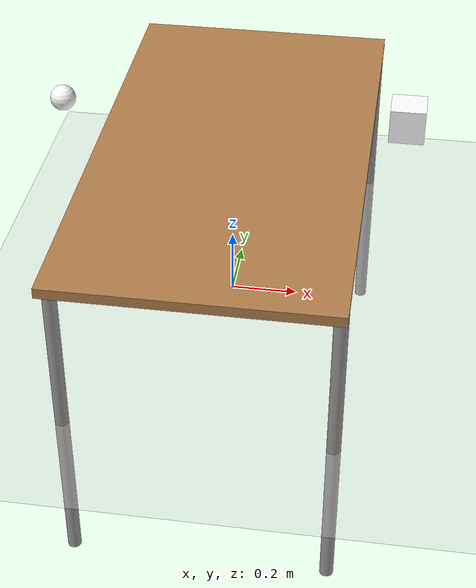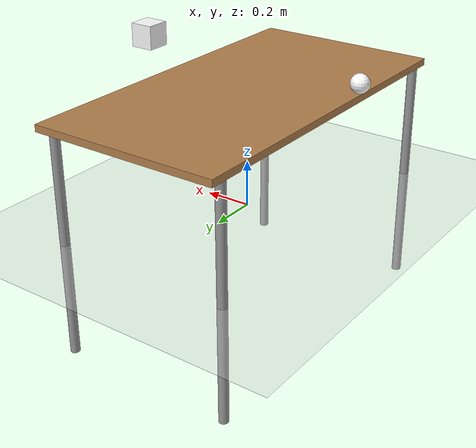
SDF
<sdf version="1.4">
 <world name="default">
  <include><uri>model://ground_plane</uri></include>
  <include><uri>model://sun</uri></include>
  <include><uri>model://table</uri><pose>0 0 -0.5 0 0 1.57</pose></include>
  <include><uri>model://wood_cube_10cm</uri><pose>0.5 0 0.6 0 0 0</pose></include>
  <include><uri>model://cricket_ball</uri><pose>-0.5 0 0.6 0 0 0</pose></include>
 </world>
</sdf>

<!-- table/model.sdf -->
<sdf version="1.5">
  <model name="table">
    <static>true</static>
    <link name="link">
      <collision name="surface">
        <pose>0 0 1.0 0 0 0</pose>
        <geometry>
          <box>
            <size>1.5 0.8 0.03</size>
          </box>
        </geometry>
        <surface>
          <friction>
            <ode>
              <mu>0.6</mu>
              <mu2>0.6</mu2>
            </ode>
          </friction>
        </surface>
      </collision>
      <visual name="visual1">
        <pose>0 0 1.0 0 0 0</pose>
        <geometry>
          <box>
            <size>1.5 0.8 0.03</size>
          </box>
        </geometry>
        <material>
          <script>
            <uri>model://media/materials/scripts/gazebo.material</uri>
            <name>Gazebo/Wood</name>
          </script>
        </material>
      </visual>
      <collision name="front_left_leg">
        <pose>0.68 0.38 0.5 0 0 0</pose>
        <geometry>
          <cylinder>
            <radius>0.02</radius>
            <length>1.0</length>
          </cylinder>
        </geometry>
      </collision>
      <visual name="front_left_leg">
        <pose>0.68 0.38 0.5 0 0 0</pose>
        <geometry>
          <cylinder>
            <radius>0.02</radius>
            <length>1.0</length>
          </cylinder>
        </geometry>
        <material>
          <script>
            <uri>model://media/materials/scripts/gazebo.material</uri>
            <name>Gazebo/Grey</name>
          </script>
        </material>
      </visual>
      <collision name="front_right_leg">
        <pose>0.68 -0.38 0.5 0 0 0</pose>
        <geometry>
          <cylinder>
            <radius>0.02</radius>
            <length>1.0</length>
          </cylinder>
        </geometry>
      </collision>
      <visual name="front_right_leg">
        <pose>0.68 -0.38 0.5 0 0 0</pose>
        <geometry>
          <cylinder>
            <radius>0.02</radius>
            <length>1.0</length>
          </cylinder>
        </geometry>
        <material>
          <script>
            <uri>model://media/materials/scripts/gazebo.material</uri>
            <name>Gazebo/Grey</name>
          </script>
        </material>
      </visual>
      <collision name="back_right_leg">
        <pose>-0.68 -0.38 0.5 0 0 0</pose>
        <geometry>
          <cylinder>
            <radius>0.02</radius>
            <length>1.0</length>
          </cylinder>
        </geometry>
      </collision>
      <visual name="back_right_leg">
        <pose>-0.68 -0.38 0.5 0 0 0</pose>
        <geometry>
          <cylinder>
            <radius>0.02</radius>
            <length>1.0</length>
          </cylinder>
        </geometry>
        <material>
          <script>
            <uri>model://media/materials/scripts/gazebo.material</uri>
            <name>Gazebo/Grey</name>
          </script>
        </material>
      </visual>
      <collision name="back_left_leg">
        <pose>-0.68 0.38 0.5 0 0 0</pose>
        <geometry>
          <cylinder>
            <radius>0.02</radius>
            <length>1.0</length>
          </cylinder>
        </geometry>
      </collision>
      <visual name="back_left_leg">
        <pose>-0.68 0.38 0.5 0 0 0</pose>
        <geometry>
          <cylinder>
            <radius>0.02</radius>
            <length>1.0</length>
          </cylinder>
        </geometry>
        <material>
          <script>
            <uri>model://media/materials/scripts/gazebo.material</uri>
            <name>Gazebo/Grey</name>
          </script>
        </material>
      </visual>
    </link>
  </model>
</sdf>

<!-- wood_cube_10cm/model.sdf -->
<sdf version="1.5">
  <model name="wood_cube_10cm">
    <link name="link">
      <pose>0 0 0.05 0 0 0</pose>
      <inertial>
        <mass>0.5167</mass>
        <inertia>
          <ixx>0.0008611666666666669</ixx>
          <ixy>0</ixy>
          <ixz>0</ixz>
          <iyy>0.0008611666666666669</iyy>
          <iyz>0</iyz>
          <izz>0.0008611666666666669</izz>
        </inertia>
      </inertial>

      <collision name="collision">
        <geometry>
          <box>
            <size>0.1 0.1 0.1</size>
          </box>
        </geometry>
        <surface>
          <contact>
            <!-- Red Pine coefficients for longitudinal axis of the wood
                 according to:
                 http://www.fpl.fs.fed.us/documnts/fplgtr/fplgtr113/ch04.pdf -->
            <poissons_ratio>0.347</poissons_ratio>
            <elastic_modulus>8.8e+09</elastic_modulus>
            <ode>
              <kp>100000</kp>
              <kd>100</kd>
              <max_vel>100.0</max_vel>
              <min_depth>0.001</min_depth>
            </ode>
          </contact>
          <friction>
            <torsional>
              <coefficient>1.0</coefficient>
              <use_patch_radius>0</use_patch_radius>
              <surface_radius>0.01</surface_radius>
            </torsional>
          </friction>
        </surface>
      </collision>

      <visual name="visual">
        <geometry>
          <box>
            <size>0.1 0.1 0.1</size>
          </box>
        </geometry>
        <material><diffuse>1 1 1 1</diffuse><specular>0.1 0.1 0.1 1</specular></material>
      </visual>

    </link>
  </model>
</sdf>

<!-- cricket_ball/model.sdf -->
<sdf version="1.5">
  <model name="cricket_ball">
    <link name="link">
      <pose>0 0 0.0375 0 0 0</pose>
      <inertial>
        <mass>0.1467</mass>
        <inertia>
          <ixx>8.251875e-05</ixx>
          <ixy>0</ixy>
          <ixz>0</ixz>
          <iyy>8.251875e-05</iyy>
          <iyz>0</iyz>
          <izz>8.251875e-05</izz>
        </inertia>
      </inertial>

      <collision name="collision">
        <geometry>
          <sphere>
            <radius>0.0375</radius>
          </sphere>
        </geometry>
        <surface>
          <contact>
            <!-- Red Pine coefficients for longitudinal axis of the wood
                 according to:
                 http://www.fpl.fs.fed.us/documnts/fplgtr/fplgtr113/ch04.pdf -->
            <poissons_ratio>0.347</poissons_ratio>
            <elastic_modulus>8.8e+09</elastic_modulus>
            <ode>
              <kp>100000</kp>
              <kd>100</kd>
              <max_vel>100.0</max_vel>
              <min_depth>0.001</min_depth>
            </ode>
          </contact>
          <friction>
            <torsional>
              <coefficient>1.0</coefficient>
              <use_patch_radius>0</use_patch_radius>
              <surface_radius>0.01</surface_radius>
            </torsional>
          </friction>
        </surface>
      </collision>

      <visual name="visual">
        <geometry>
          <sphere>
            <radius>0.0375</radius>
          </sphere>
        </geometry>
        <material><diffuse>1 1 1 1</diffuse><specular>0.1 0.1 0.1 1</specular></material>
      </visual>

      <!-- approximate rolling friction -->
      <velocity_decay>
        <linear>0.00</linear>
        <angular>0.005</angular>
      </velocity_decay>
    </link>
  </model>
</sdf>
